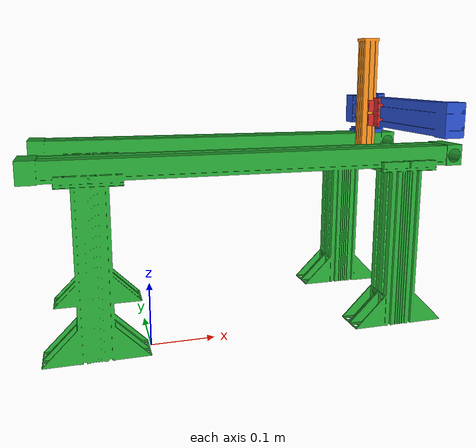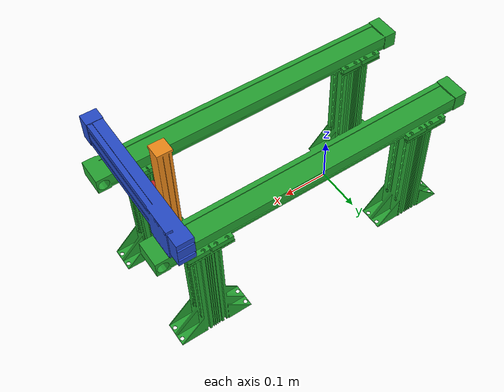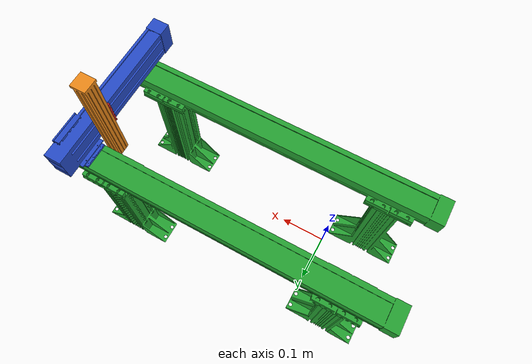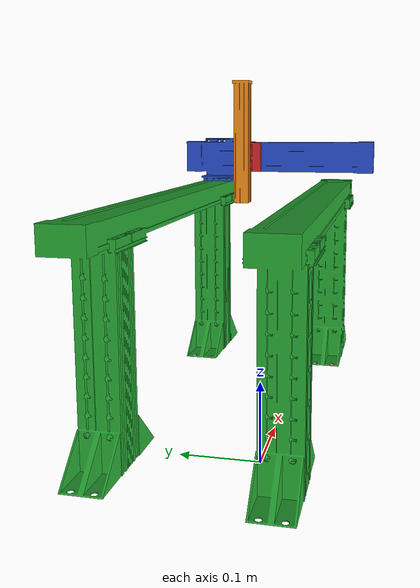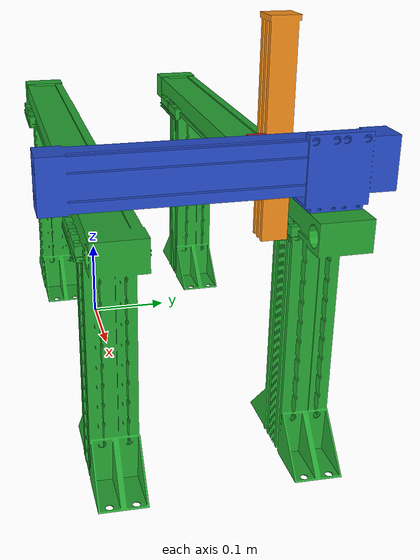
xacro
<?xml version="1.0"?>
<robot xmlns:xacro="http://www.ros.org/wiki/xacro" name="morphle_bot">

  <link name="world"></link>

  <joint name="fix_joint" type="fixed">  <!-- to fix the model (base link in this case) with respect to the world/ground -->
      <origin
        xyz="0 0 0"
        rpy="0 0 0"/>
      <parent link="world"/>
      <child link="base_link"/>
  </joint>

  <link name="base_link">
    <inertial>
      <origin
        xyz="0.0 0.0 0.0"
        rpy="0 0 0" />
      <mass
        value="10.0" />
      <inertia
        ixx="0.0"
        ixy="0.0"
        ixz="0.0"
        iyy="0.0"
        iyz="0.0"
        izz="0.0" />
    </inertial>
    <visual>
      <origin
        xyz="0 0 0.0"
        rpy="0 0 0" />
      <geometry>
        <mesh filename="file://$(find morphle_bot)/meshes/base_link.dae"/>
      </geometry>
    </visual>

    <collision>
      <origin
        xyz="0 0 0.0"
        rpy="0 0 0" />
      <geometry>
        <box size="0 0 0" />
      </geometry>
    </collision>
  </link>

  <link name="axisx">
    <inertial>
      <origin
        xyz="0.080886 -0.041128 0.022589"
        rpy="0 0 0" />

      <mass
        value="1.0" />

      <inertia
        ixx="0.0"
        ixy="0.0"
        ixz="0.0"
        iyy="0.0"
        iyz="0.0"
        izz="0.0" />
    </inertial>

    <visual>
      <origin
        xyz="0 0 0"
        rpy="0 0 0" />
      <geometry>
        <mesh filename="file://$(find morphle_bot)/meshes/axisx.dae"/>
      </geometry>
    </visual>

    <collision>
      <origin
        xyz="0 0 0"
        rpy="0 0 0" />
      <geometry>
        <box size="0.0 0.0 0.0" />
      </geometry>
    </collision>
  </link>

  <joint name="jointx" type="prismatic">
    <origin
      xyz="0.41367 0.13552 0.30273"
      rpy="-1.5708 0 -1.5708" />

    <parent
      link="base_link" />

    <child
      link="axisx" />

    <axis
      xyz="0 0 -1" />

    <limit
      lower="0"
      upper="0.5"
      velocity="0.2"
      effort="5000" />

    <dynamics damping="1.0" friction="0.5"/>

    <safety_controller
      soft_upper="1"
      soft_lower="0"
      k_velocity="1" />
  </joint>

  <link
    name="axisy">
    <inertial>
      <origin
        xyz="-0.021936 0.0032019 0.0089378"
        rpy="0 0 0" />

      <mass
        value="1.0" />

      <inertia
        ixx="0.0"
        ixy="0.0"
        ixz="0.0"
        iyy="0.0"
        iyz="0.0"
        izz="0.0" />
    </inertial>

    <visual>
      <origin
        xyz="0 0 0"
        rpy="0 0 0" />
      <geometry>
        <mesh filename="file://$(find morphle_bot)/meshes/axisy.dae"/>
      </geometry>
    </visual>

    <collision>
      <origin
        xyz="0 0 0"
        rpy="0 0 0" />
      <geometry>
        <box size="0.0 0.0 0.0" />
      </geometry>
    </collision>
  </link>

  <joint
    name="jointy"
    type="prismatic">
    <origin
      xyz="0.033197 -0.063132 0.0075115"
      rpy="-1.5708 0.0036853 -1.5708" />

    <parent
      link="axisx" />

    <child
      link="axisy" />

    <axis
      xyz="0 0 1" />

    <limit
      lower="0"
      upper="0.25"
      velocity="0.2"
      effort="5000" />

    <dynamics damping="1.0" friction="0.5"/>

    <safety_controller
      soft_upper="1"
      soft_lower="0"
      k_velocity="1" />
  </joint>

  <link name="axisz">
    <inertial>
      <origin
        xyz="-0.013834 -0.10415 -0.012215"
        rpy="0 0 0" />

      <mass
        value="0.46346" />

      <inertia
        ixx="0.0"
        ixy="0.0"
        ixz="0.0"
        iyy="0.0"
        iyz="0.0"
        izz="0.0" />
    </inertial>

    <visual>
      <origin
        xyz="0 0 0"
        rpy="0 0 0" />
      <geometry>
        <mesh filename="file://$(find morphle_bot)/meshes/axisz.dae"/>
      </geometry>
    </visual>

    <collision>
      <origin
        xyz="0 0 0"
        rpy="0 0 0" />
      <geometry>
        <box size="0.0 0.0 0.0" />
      </geometry>
    </collision>
  </link>

  <joint
    name="jointz"
    type="prismatic">
    <origin
      xyz="-0.09904 0 0.0043533"
      rpy="1.5708 -1.5708 0" />

    <parent
      link="axisy" />

    <child
      link="axisz" />

    <axis
      xyz="0 1 0" />

    <limit
      lower="0"
      upper="0.2"
      velocity="0.2"
      effort="5000" />

    <dynamics damping="1.0" friction="0.5"/>

    <safety_controller
      soft_upper="1"
      soft_lower="0"
      k_velocity="1" />
  </joint> -->

  <!-- gazebo material declarations -->
  <gazebo reference="base_link">
    <material>Gazebo/Green</material>
  </gazebo>

  <gazebo reference="axisx">
    <material>Gazebo/Blue</material>
  </gazebo>

  <gazebo reference="axisy">
    <material>Gazebo/Red</material>
  </gazebo>

  <gazebo reference="axisz">
    <material>Gazebo/Orange</material>
  </gazebo>

  <!-- gazebo plugin descriptions -->

  <gazebo>
    <plugin filename="libgazebo_ros2_control.so" name="gazebo_ros2_control">
      <robot_sim_type>gazebo_ros2_control/GazeboSystem</robot_sim_type>
      <parameters>$(find morphle_bot)/config/controller_configuration.yaml</parameters>
    </plugin>
  </gazebo>

  <!-- ros2 control plugins -->
  <ros2_control name="GazeboSystem" type="system">

    <hardware>
      <plugin>gazebo_ros2_control/GazeboSystem</plugin>
    </hardware>

    <joint name="jointx">
      <command_interface name="position">  <!-- starting the command interfaces of the hardware interface -->
        <param name="min">0.0</param>
        <param name="max">0.5</param>
      </command_interface>

      <command_interface name="velocity">
        <param name="min">0.0</param>
        <param name="max">0.2</param>
      </command_interface>

      <command_interface name="effort">
        <param name="min">0.0</param>
        <param name="max">5000.0</param>
      </command_interface>

      <state_interface name="position"/>  <!-- starting the state interfaces of the hardware interface -->
      <state_interface name="velocity"/>
      <state_interface name="effort"/>
    </joint>

    <joint name="jointy">
      <command_interface name="position">
        <param name="min">0</param>
        <param name="max">0.05</param>
      </command_interface>

      <command_interface name="velocity">
        <param name="min">0.0</param>
        <param name="max">0.2</param>
      </command_interface>

      <command_interface name="effort">
        <param name="min">0.0</param>
        <param name="max">5000.0</param>
      </command_interface>

      <state_interface name="position"/>
      <state_interface name="velocity"/>
      <state_interface name="effort"/>
    </joint>

    <joint name="jointz">
      <command_interface name="position">
        <param name="min">0</param>
        <param name="max">0.05</param>
      </command_interface>

      <command_interface name="velocity">
        <param name="min">0.0</param>
        <param name="max">0.2</param>
      </command_interface>

      <command_interface name="effort">
        <param name="min">0.0</param>
        <param name="max">5000.0</param>
      </command_interface>

      <state_interface name="position"/>
      <state_interface name="velocity"/>
      <state_interface name="effort"/>
    </joint>

  </ros2_control>

</robot>
